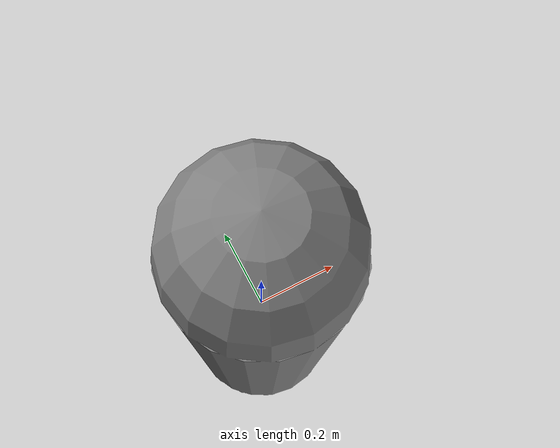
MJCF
<mujoco model="robot_obstacle">
	<compiler angle="radian"/>
	<worldbody>
		<body name="obstacle" pos="0 0 0">
			<freejoint name="root"/>
			<geom name="obstacle" type="capsule" size="0.2 0.4" density="500.0" friction="0.8 0.02 0.002"/>
		</body>
	</worldbody>
</mujoco>
